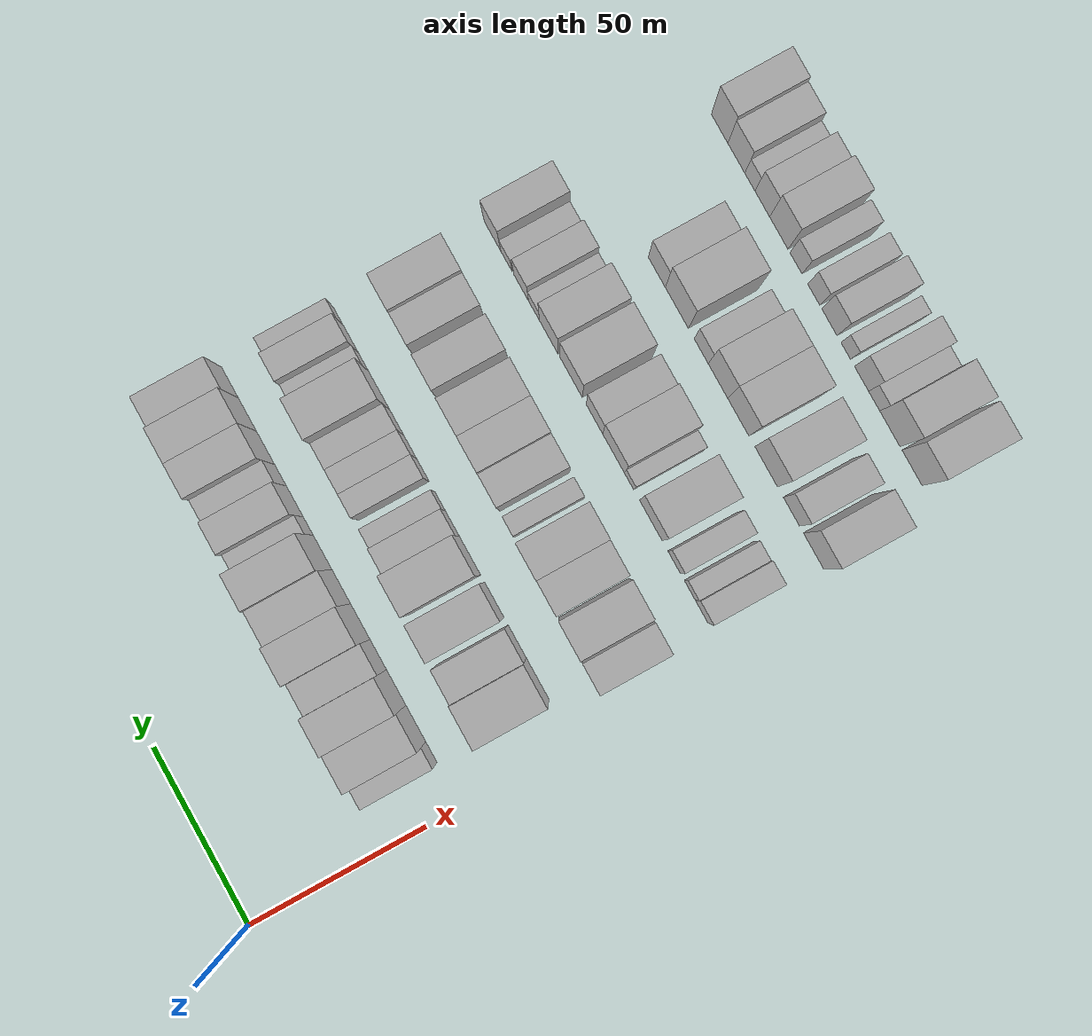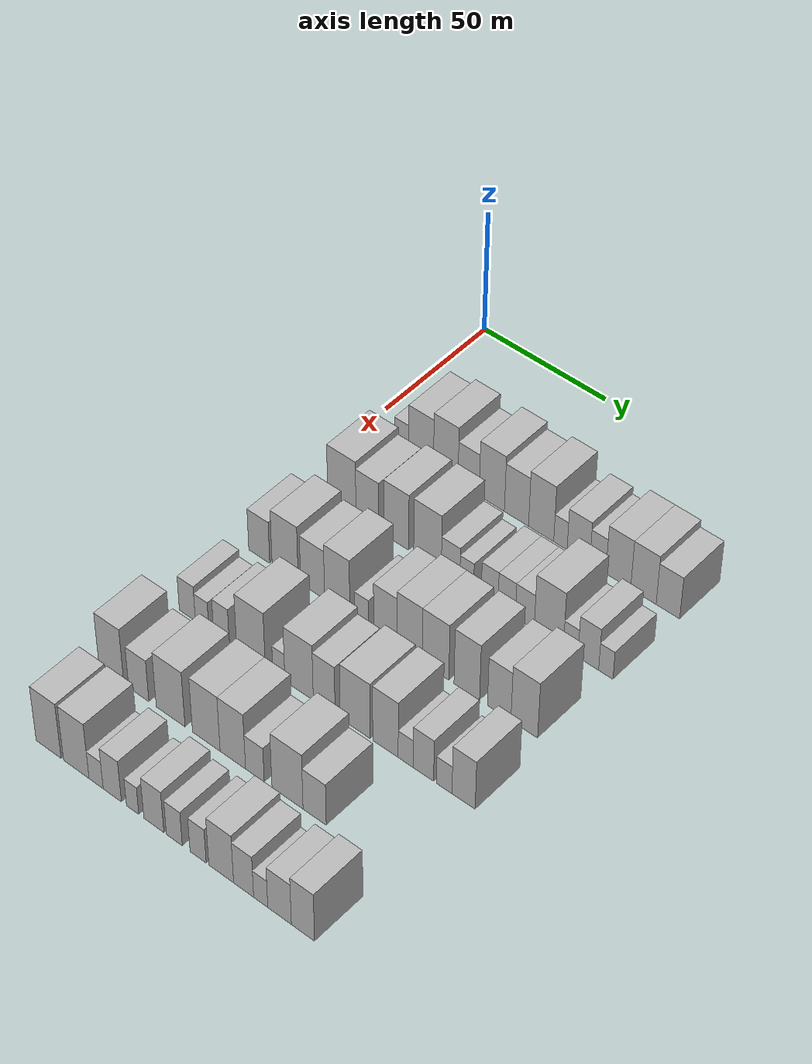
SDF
<sdf version="1.6">
 <world name="default">
  <model name="building_59">
   <static>1</static>
   <pose>50.0000 15.3868 0 0.000000 0.000000 0.000000</pose>
   <link name="link">
    <pose>0 0 6.00 0 0 0</pose>
    <collision name="collision"><geometry><box><size>20.0000 5.8748 12.0000</size></box></geometry></collision>
    <visual name="visual">
     <cast_shadows>0</cast_shadows>
     <geometry><box><size>20.0000 5.8748 12.0000</size></box></geometry>
     <material>
      <script>
       <uri>model://HANNAS_wall/materials/scripts</uri>
       <uri>model://HANNAS_wall/materials/textures</uri>
       <name>vrc/HANNAS_wall</name>
      </script>
     </material>
    </visual>
   </link>
  </model>
  <model name="building_60">
   <static>1</static>
   <pose>50.0000 23.4802 0 0.000000 0.000000 0.000000</pose>
   <link name="link">
    <pose>0 0 10.50 0 0 0</pose>
    <collision name="collision"><geometry><box><size>20.0000 10.3121 21.0000</size></box></geometry></collision>
    <visual name="visual">
     <cast_shadows>0</cast_shadows>
     <geometry><box><size>20.0000 10.3121 21.0000</size></box></geometry>
     <material>
      <script>
       <uri>model://HANNAS_wall/materials/scripts</uri>
       <uri>model://HANNAS_wall/materials/textures</uri>
       <name>vrc/HANNAS_wall</name>
      </script>
     </material>
    </visual>
   </link>
  </model>
  <model name="building_61">
   <static>1</static>
   <pose>50.0000 33.6829 0 0.000000 0.000000 0.000000</pose>
   <link name="link">
    <pose>0 0 12.00 0 0 0</pose>
    <collision name="collision"><geometry><box><size>20.0000 10.0933 24.0000</size></box></geometry></collision>
    <visual name="visual">
     <cast_shadows>0</cast_shadows>
     <geometry><box><size>20.0000 10.0933 24.0000</size></box></geometry>
     <material>
      <script>
       <uri>model://HANNAS_wall/materials/scripts</uri>
       <uri>model://HANNAS_wall/materials/textures</uri>
       <name>vrc/HANNAS_wall</name>
      </script>
     </material>
    </visual>
   </link>
  </model>
  <model name="building_62">
   <static>1</static>
   <pose>50.0000 43.0296 0 0.000000 0.000000 0.000000</pose>
   <link name="link">
    <pose>0 0 9.00 0 0 0</pose>
    <collision name="collision"><geometry><box><size>20.0000 8.6001 18.0000</size></box></geometry></collision>
    <visual name="visual">
     <cast_shadows>0</cast_shadows>
     <geometry><box><size>20.0000 8.6001 18.0000</size></box></geometry>
     <material>
      <script>
       <uri>model://HANNAS_wall/materials/scripts</uri>
       <uri>model://HANNAS_wall/materials/textures</uri>
       <name>vrc/HANNAS_wall</name>
      </script>
     </material>
    </visual>
   </link>
  </model>
  <model name="building_63">
   <static>1</static>
   <pose>50.0000 52.4383 0 0.000000 0.000000 0.000000</pose>
   <link name="link">
    <pose>0 0 12.00 0 0 0</pose>
    <collision name="collision"><geometry><box><size>20.0000 10.2171 24.0000</size></box></geometry></collision>
    <visual name="visual">
     <cast_shadows>0</cast_shadows>
     <geometry><box><size>20.0000 10.2171 24.0000</size></box></geometry>
     <material>
      <script>
       <uri>model://HANNAS_wall/materials/scripts</uri>
       <uri>model://HANNAS_wall/materials/textures</uri>
       <name>vrc/HANNAS_wall</name>
      </script>
     </material>
    </visual>
   </link>
  </model>
  <model name="building_64">
   <static>1</static>
   <pose>50.0000 62.3815 0 0.000000 0.000000 0.000000</pose>
   <link name="link">
    <pose>0 0 10.50 0 0 0</pose>
    <collision name="collision"><geometry><box><size>20.0000 9.6693 21.0000</size></box></geometry></collision>
    <visual name="visual">
     <cast_shadows>0</cast_shadows>
     <geometry><box><size>20.0000 9.6693 21.0000</size></box></geometry>
     <material>
      <script>
       <uri>model://HANNAS_wall/materials/scripts</uri>
       <uri>model://HANNAS_wall/materials/textures</uri>
       <name>vrc/HANNAS_wall</name>
      </script>
     </material>
    </visual>
   </link>
  </model>
  <model name="building_65">
   <static>1</static>
   <pose>50.0000 72.2107 0 0.000000 0.000000 0.000000</pose>
   <link name="link">
    <pose>0 0 12.00 0 0 0</pose>
    <collision name="collision"><geometry><box><size>20.0000 9.9893 24.0000</size></box></geometry></collision>
    <visual name="visual">
     <cast_shadows>0</cast_shadows>
     <geometry><box><size>20.0000 9.9893 24.0000</size></box></geometry>
     <material>
      <script>
       <uri>model://HANNAS_wall/materials/scripts</uri>
       <uri>model://HANNAS_wall/materials/textures</uri>
       <name>vrc/HANNAS_wall</name>
      </script>
     </material>
    </visual>
   </link>
  </model>
  <model name="building_66">
   <static>1</static>
   <pose>50.0000 79.8347 0 0.000000 0.000000 0.000000</pose>
   <link name="link">
    <pose>0 0 6.00 0 0 0</pose>
    <collision name="collision"><geometry><box><size>20.0000 5.2586 12.0000</size></box></geometry></collision>
    <visual name="visual">
     <cast_shadows>0</cast_shadows>
     <geometry><box><size>20.0000 5.2586 12.0000</size></box></geometry>
     <material>
      <script>
       <uri>model://HANNAS_wall/materials/scripts</uri>
       <uri>model://HANNAS_wall/materials/textures</uri>
       <name>vrc/HANNAS_wall</name>
      </script>
     </material>
    </visual>
   </link>
  </model>
  <model name="building_67">
   <static>1</static>
   <pose>50.0000 86.8928 0 0.000000 0.000000 0.000000</pose>
   <link name="link">
    <pose>0 0 9.00 0 0 0</pose>
    <collision name="collision"><geometry><box><size>20.0000 8.8576 18.0000</size></box></geometry></collision>
    <visual name="visual">
     <cast_shadows>0</cast_shadows>
     <geometry><box><size>20.0000 8.8576 18.0000</size></box></geometry>
     <material>
      <script>
       <uri>model://HANNAS_wall/materials/scripts</uri>
       <uri>model://HANNAS_wall/materials/textures</uri>
       <name>vrc/HANNAS_wall</name>
      </script>
     </material>
    </visual>
   </link>
  </model>
  <model name="building_68">
   <static>1</static>
   <pose>50.0000 94.4413 0 0.000000 0.000000 0.000000</pose>
   <link name="link">
    <pose>0 0 7.50 0 0 0</pose>
    <collision name="collision"><geometry><box><size>20.0000 6.2395 15.0000</size></box></geometry></collision>
    <visual name="visual">
     <cast_shadows>0</cast_shadows>
     <geometry><box><size>20.0000 6.2395 15.0000</size></box></geometry>
     <material>
      <script>
       <uri>model://HANNAS_wall/materials/scripts</uri>
       <uri>model://HANNAS_wall/materials/textures</uri>
       <name>vrc/HANNAS_wall</name>
      </script>
     </material>
    </visual>
   </link>
  </model>
  <model name="building_69">
   <static>1</static>
   <pose>50.0000 102.3436 0 0.000000 0.000000 0.000000</pose>
   <link name="link">
    <pose>0 0 10.50 0 0 0</pose>
    <collision name="collision"><geometry><box><size>20.0000 9.5651 21.0000</size></box></geometry></collision>
    <visual name="visual">
     <cast_shadows>0</cast_shadows>
     <geometry><box><size>20.0000 9.5651 21.0000</size></box></geometry>
     <material>
      <script>
       <uri>model://HANNAS_wall/materials/scripts</uri>
       <uri>model://HANNAS_wall/materials/textures</uri>
       <name>vrc/HANNAS_wall</name>
      </script>
     </material>
    </visual>
   </link>
  </model>
  <model name="building_70">
   <static>1</static>
   <pose>50.0000 111.9869 0 0.000000 0.000000 0.000000</pose>
   <link name="link">
    <pose>0 0 10.50 0 0 0</pose>
    <collision name="collision"><geometry><box><size>20.0000 9.7216 21.0000</size></box></geometry></collision>
    <visual name="visual">
     <cast_shadows>0</cast_shadows>
     <geometry><box><size>20.0000 9.7216 21.0000</size></box></geometry>
     <material>
      <script>
       <uri>model://HANNAS_wall/materials/scripts</uri>
       <uri>model://HANNAS_wall/materials/textures</uri>
       <name>vrc/HANNAS_wall</name>
      </script>
     </material>
    </visual>
   </link>
  </model>
  <model name="building_71">
   <static>1</static>
   <pose>50.0000 121.2988 0 0.000000 0.000000 0.000000</pose>
   <link name="link">
    <pose>0 0 9.00 0 0 0</pose>
    <collision name="collision"><geometry><box><size>20.0000 8.9022 18.0000</size></box></geometry></collision>
    <visual name="visual">
     <cast_shadows>0</cast_shadows>
     <geometry><box><size>20.0000 8.9022 18.0000</size></box></geometry>
     <material>
      <script>
       <uri>model://HANNAS_wall/materials/scripts</uri>
       <uri>model://HANNAS_wall/materials/textures</uri>
       <name>vrc/HANNAS_wall</name>
      </script>
     </material>
    </visual>
   </link>
  </model>
  <model name="building_182">
   <static>1</static>
   <pose>82.0000 18.5074 0 0.000000 0.000000 0.000000</pose>
   <link name="link">
    <pose>0 0 12.00 0 0 0</pose>
    <collision name="collision"><geometry><box><size>20.0000 11.7330 24.0000</size></box></geometry></collision>
    <visual name="visual">
     <cast_shadows>0</cast_shadows>
     <geometry><box><size>20.0000 11.7330 24.0000</size></box></geometry>
     <material>
      <script>
       <uri>model://HANNAS_wall/materials/scripts</uri>
       <uri>model://HANNAS_wall/materials/textures</uri>
       <name>vrc/HANNAS_wall</name>
      </script>
     </material>
    </visual>
   </link>
  </model>
  <model name="building_183">
   <static>1</static>
   <pose>82.0000 29.0555 0 0.000000 0.000000 0.000000</pose>
   <link name="link">
    <pose>0 0 10.50 0 0 0</pose>
    <collision name="collision"><geometry><box><size>20.0000 9.3634 21.0000</size></box></geometry></collision>
    <visual name="visual">
     <cast_shadows>0</cast_shadows>
     <geometry><box><size>20.0000 9.3634 21.0000</size></box></geometry>
     <material>
      <script>
       <uri>model://HANNAS_wall/materials/scripts</uri>
       <uri>model://HANNAS_wall/materials/textures</uri>
       <name>vrc/HANNAS_wall</name>
      </script>
     </material>
    </visual>
   </link>
  </model>
  <model name="building_184">
   <static>1</static>
   <pose>82.0000 40.8371 0 0.000000 0.000000 0.000000</pose>
   <link name="link">
    <pose>0 0 12.00 0 0 0</pose>
    <collision name="collision"><geometry><box><size>20.0000 10.1998 24.0000</size></box></geometry></collision>
    <visual name="visual">
     <cast_shadows>0</cast_shadows>
     <geometry><box><size>20.0000 10.1998 24.0000</size></box></geometry>
     <material>
      <script>
       <uri>model://HANNAS_wall/materials/scripts</uri>
       <uri>model://HANNAS_wall/materials/textures</uri>
       <name>vrc/HANNAS_wall</name>
      </script>
     </material>
    </visual>
   </link>
  </model>
  <model name="building_185">
   <static>1</static>
   <pose>82.0000 53.4792 0 0.000000 0.000000 0.000000</pose>
   <link name="link">
    <pose>0 0 12.00 0 0 0</pose>
    <collision name="collision"><geometry><box><size>20.0000 11.0843 24.0000</size></box></geometry></collision>
    <visual name="visual">
     <cast_shadows>0</cast_shadows>
     <geometry><box><size>20.0000 11.0843 24.0000</size></box></geometry>
     <material>
      <script>
       <uri>model://HANNAS_wall/materials/scripts</uri>
       <uri>model://HANNAS_wall/materials/textures</uri>
       <name>vrc/HANNAS_wall</name>
      </script>
     </material>
    </visual>
   </link>
  </model>
  <model name="building_186">
   <static>1</static>
   <pose>82.0000 62.7030 0 0.000000 0.000000 0.000000</pose>
   <link name="link">
    <pose>0 0 7.50 0 0 0</pose>
    <collision name="collision"><geometry><box><size>20.0000 7.3633 15.0000</size></box></geometry></collision>
    <visual name="visual">
     <cast_shadows>0</cast_shadows>
     <geometry><box><size>20.0000 7.3633 15.0000</size></box></geometry>
     <material>
      <script>
       <uri>model://HANNAS_wall/materials/scripts</uri>
       <uri>model://HANNAS_wall/materials/textures</uri>
       <name>vrc/HANNAS_wall</name>
      </script>
     </material>
    </visual>
   </link>
  </model>
  <model name="building_187">
   <static>1</static>
   <pose>82.0000 69.1044 0 0.000000 0.000000 0.000000</pose>
   <link name="link">
    <pose>0 0 6.00 0 0 0</pose>
    <collision name="collision"><geometry><box><size>20.0000 5.4395 12.0000</size></box></geometry></collision>
    <visual name="visual">
     <cast_shadows>0</cast_shadows>
     <geometry><box><size>20.0000 5.4395 12.0000</size></box></geometry>
     <material>
      <script>
       <uri>model://HANNAS_wall/materials/scripts</uri>
       <uri>model://HANNAS_wall/materials/textures</uri>
       <name>vrc/HANNAS_wall</name>
      </script>
     </material>
    </visual>
   </link>
  </model>
  <model name="building_188">
   <static>1</static>
   <pose>82.0000 78.1077 0 0.000000 0.000000 0.000000</pose>
   <link name="link">
    <pose>0 0 7.50 0 0 0</pose>
    <collision name="collision"><geometry><box><size>20.0000 6.5672 15.0000</size></box></geometry></collision>
    <visual name="visual">
     <cast_shadows>0</cast_shadows>
     <geometry><box><size>20.0000 6.5672 15.0000</size></box></geometry>
     <material>
      <script>
       <uri>model://HANNAS_wall/materials/scripts</uri>
       <uri>model://HANNAS_wall/materials/textures</uri>
       <name>vrc/HANNAS_wall</name>
      </script>
     </material>
    </visual>
   </link>
  </model>
  <model name="building_189">
   <static>1</static>
   <pose>82.0000 84.7889 0 0.000000 0.000000 0.000000</pose>
   <link name="link">
    <pose>0 0 7.50 0 0 0</pose>
    <collision name="collision"><geometry><box><size>20.0000 6.7951 15.0000</size></box></geometry></collision>
    <visual name="visual">
     <cast_shadows>0</cast_shadows>
     <geometry><box><size>20.0000 6.7951 15.0000</size></box></geometry>
     <material>
      <script>
       <uri>model://HANNAS_wall/materials/scripts</uri>
       <uri>model://HANNAS_wall/materials/textures</uri>
       <name>vrc/HANNAS_wall</name>
      </script>
     </material>
    </visual>
   </link>
  </model>
  <model name="building_190">
   <static>1</static>
   <pose>82.0000 91.8250 0 0.000000 0.000000 0.000000</pose>
   <link name="link">
    <pose>0 0 7.50 0 0 0</pose>
    <collision name="collision"><geometry><box><size>20.0000 7.2771 15.0000</size></box></geometry></collision>
    <visual name="visual">
     <cast_shadows>0</cast_shadows>
     <geometry><box><size>20.0000 7.2771 15.0000</size></box></geometry>
     <material>
      <script>
       <uri>model://HANNAS_wall/materials/scripts</uri>
       <uri>model://HANNAS_wall/materials/textures</uri>
       <name>vrc/HANNAS_wall</name>
      </script>
     </material>
    </visual>
   </link>
  </model>
  <model name="building_191">
   <static>1</static>
   <pose>82.0000 101.0601 0 0.000000 0.000000 0.000000</pose>
   <link name="link">
    <pose>0 0 12.00 0 0 0</pose>
    <collision name="collision"><geometry><box><size>20.0000 11.1932 24.0000</size></box></geometry></collision>
    <visual name="visual">
     <cast_shadows>0</cast_shadows>
     <geometry><box><size>20.0000 11.1932 24.0000</size></box></geometry>
     <material>
      <script>
       <uri>model://HANNAS_wall/materials/scripts</uri>
       <uri>model://HANNAS_wall/materials/textures</uri>
       <name>vrc/HANNAS_wall</name>
      </script>
     </material>
    </visual>
   </link>
  </model>
  <model name="building_192">
   <static>1</static>
   <pose>82.0000 109.4199 0 0.000000 0.000000 0.000000</pose>
   <link name="link">
    <pose>0 0 6.00 0 0 0</pose>
    <collision name="collision"><geometry><box><size>20.0000 5.5265 12.0000</size></box></geometry></collision>
    <visual name="visual">
     <cast_shadows>0</cast_shadows>
     <geometry><box><size>20.0000 5.5265 12.0000</size></box></geometry>
     <material>
      <script>
       <uri>model://HANNAS_wall/materials/scripts</uri>
       <uri>model://HANNAS_wall/materials/textures</uri>
       <name>vrc/HANNAS_wall</name>
      </script>
     </material>
    </visual>
   </link>
  </model>
  <model name="building_193">
   <static>1</static>
   <pose>82.0000 116.1025 0 0.000000 0.000000 0.000000</pose>
   <link name="link">
    <pose>0 0 9.00 0 0 0</pose>
    <collision name="collision"><geometry><box><size>20.0000 7.8385 18.0000</size></box></geometry></collision>
    <visual name="visual">
     <cast_shadows>0</cast_shadows>
     <geometry><box><size>20.0000 7.8385 18.0000</size></box></geometry>
     <material>
      <script>
       <uri>model://HANNAS_wall/materials/scripts</uri>
       <uri>model://HANNAS_wall/materials/textures</uri>
       <name>vrc/HANNAS_wall</name>
      </script>
     </material>
    </visual>
   </link>
  </model>
  <model name="building_194">
   <static>1</static>
   <pose>82.0000 122.7184 0 0.000000 0.000000 0.000000</pose>
   <link name="link">
    <pose>0 0 6.00 0 0 0</pose>
    <collision name="collision"><geometry><box><size>20.0000 5.3933 12.0000</size></box></geometry></collision>
    <visual name="visual">
     <cast_shadows>0</cast_shadows>
     <geometry><box><size>20.0000 5.3933 12.0000</size></box></geometry>
     <material>
      <script>
       <uri>model://HANNAS_wall/materials/scripts</uri>
       <uri>model://HANNAS_wall/materials/textures</uri>
       <name>vrc/HANNAS_wall</name>
      </script>
     </material>
    </visual>
   </link>
  </model>
  <model name="building_301">
   <static>1</static>
   <pose>114.0000 13.1489 0 0.000000 0.000000 0.000000</pose>
   <link name="link">
    <pose>0 0 9.00 0 0 0</pose>
    <collision name="collision"><geometry><box><size>20.0000 8.7026 18.0000</size></box></geometry></collision>
    <visual name="visual">
     <cast_shadows>0</cast_shadows>
     <geometry><box><size>20.0000 8.7026 18.0000</size></box></geometry>
     <material>
      <script>
       <uri>model://HANNAS_wall/materials/scripts</uri>
       <uri>model://HANNAS_wall/materials/textures</uri>
       <name>vrc/HANNAS_wall</name>
      </script>
     </material>
    </visual>
   </link>
  </model>
  <model name="building_302">
   <static>1</static>
   <pose>114.0000 23.8713 0 0.000000 0.000000 0.000000</pose>
   <link name="link">
    <pose>0 0 12.00 0 0 0</pose>
    <collision name="collision"><geometry><box><size>20.0000 10.7421 24.0000</size></box></geometry></collision>
    <visual name="visual">
     <cast_shadows>0</cast_shadows>
     <geometry><box><size>20.0000 10.7421 24.0000</size></box></geometry>
     <material>
      <script>
       <uri>model://HANNAS_wall/materials/scripts</uri>
       <uri>model://HANNAS_wall/materials/textures</uri>
       <name>vrc/HANNAS_wall</name>
      </script>
     </material>
    </visual>
   </link>
  </model>
  <model name="building_303">
   <static>1</static>
   <pose>114.0000 35.1069 0 0.000000 0.000000 0.000000</pose>
   <link name="link">
    <pose>0 0 10.50 0 0 0</pose>
    <collision name="collision"><geometry><box><size>20.0000 9.7292 21.0000</size></box></geometry></collision>
    <visual name="visual">
     <cast_shadows>0</cast_shadows>
     <geometry><box><size>20.0000 9.7292 21.0000</size></box></geometry>
     <material>
      <script>
       <uri>model://HANNAS_wall/materials/scripts</uri>
       <uri>model://HANNAS_wall/materials/textures</uri>
       <name>vrc/HANNAS_wall</name>
      </script>
     </material>
    </visual>
   </link>
  </model>
  <model name="building_304">
   <static>1</static>
   <pose>114.0000 45.0587 0 0.000000 0.000000 0.000000</pose>
   <link name="link">
    <pose>0 0 12.00 0 0 0</pose>
    <collision name="collision"><geometry><box><size>20.0000 10.1744 24.0000</size></box></geometry></collision>
    <visual name="visual">
     <cast_shadows>0</cast_shadows>
     <geometry><box><size>20.0000 10.1744 24.0000</size></box></geometry>
     <material>
      <script>
       <uri>model://HANNAS_wall/materials/scripts</uri>
       <uri>model://HANNAS_wall/materials/textures</uri>
       <name>vrc/HANNAS_wall</name>
      </script>
     </material>
    </visual>
   </link>
  </model>
  <model name="building_305">
   <static>1</static>
   <pose>114.0000 54.8915 0 0.000000 0.000000 0.000000</pose>
   <link name="link">
    <pose>0 0 6.00 0 0 0</pose>
    <collision name="collision"><geometry><box><size>20.0000 5.4911 12.0000</size></box></geometry></collision>
    <visual name="visual">
     <cast_shadows>0</cast_shadows>
     <geometry><box><size>20.0000 5.4911 12.0000</size></box></geometry>
     <material>
      <script>
       <uri>model://HANNAS_wall/materials/scripts</uri>
       <uri>model://HANNAS_wall/materials/textures</uri>
       <name>vrc/HANNAS_wall</name>
      </script>
     </material>
    </visual>
   </link>
  </model>
  <model name="building_306">
   <static>1</static>
   <pose>114.0000 64.2432 0 0.000000 0.000000 0.000000</pose>
   <link name="link">
    <pose>0 0 10.50 0 0 0</pose>
    <collision name="collision"><geometry><box><size>20.0000 9.2123 21.0000</size></box></geometry></collision>
    <visual name="visual">
     <cast_shadows>0</cast_shadows>
     <geometry><box><size>20.0000 9.2123 21.0000</size></box></geometry>
     <material>
      <script>
       <uri>model://HANNAS_wall/materials/scripts</uri>
       <uri>model://HANNAS_wall/materials/textures</uri>
       <name>vrc/HANNAS_wall</name>
      </script>
     </material>
    </visual>
   </link>
  </model>
  <model name="building_307">
   <static>1</static>
   <pose>114.0000 73.8010 0 0.000000 0.000000 0.000000</pose>
   <link name="link">
    <pose>0 0 12.00 0 0 0</pose>
    <collision name="collision"><geometry><box><size>20.0000 9.9033 24.0000</size></box></geometry></collision>
    <visual name="visual">
     <cast_shadows>0</cast_shadows>
     <geometry><box><size>20.0000 9.9033 24.0000</size></box></geometry>
     <material>
      <script>
       <uri>model://HANNAS_wall/materials/scripts</uri>
       <uri>model://HANNAS_wall/materials/textures</uri>
       <name>vrc/HANNAS_wall</name>
      </script>
     </material>
    </visual>
   </link>
  </model>
  <model name="building_308">
   <static>1</static>
   <pose>114.0000 83.9132 0 0.000000 0.000000 0.000000</pose>
   <link name="link">
    <pose>0 0 12.00 0 0 0</pose>
    <collision name="collision"><geometry><box><size>20.0000 10.3211 24.0000</size></box></geometry></collision>
    <visual name="visual">
     <cast_shadows>0</cast_shadows>
     <geometry><box><size>20.0000 10.3211 24.0000</size></box></geometry>
     <material>
      <script>
       <uri>model://HANNAS_wall/materials/scripts</uri>
       <uri>model://HANNAS_wall/materials/textures</uri>
       <name>vrc/HANNAS_wall</name>
      </script>
     </material>
    </visual>
   </link>
  </model>
  <model name="building_309">
   <static>1</static>
   <pose>114.0000 95.9749 0 0.000000 0.000000 0.000000</pose>
   <link name="link">
    <pose>0 0 12.00 0 0 0</pose>
    <collision name="collision"><geometry><box><size>20.0000 9.8024 24.0000</size></box></geometry></collision>
    <visual name="visual">
     <cast_shadows>0</cast_shadows>
     <geometry><box><size>20.0000 9.8024 24.0000</size></box></geometry>
     <material>
      <script>
       <uri>model://HANNAS_wall/materials/scripts</uri>
       <uri>model://HANNAS_wall/materials/textures</uri>
       <name>vrc/HANNAS_wall</name>
      </script>
     </material>
    </visual>
   </link>
  </model>
  <model name="building_310">
   <static>1</static>
   <pose>114.0000 108.3152 0 0.000000 0.000000 0.000000</pose>
   <link name="link">
    <pose>0 0 10.50 0 0 0</pose>
    <collision name="collision"><geometry><box><size>20.0000 8.8782 21.0000</size></box></geometry></collision>
    <visual name="visual">
     <cast_shadows>0</cast_shadows>
     <geometry><box><size>20.0000 8.8782 21.0000</size></box></geometry>
     <material>
      <script>
       <uri>model://HANNAS_wall/materials/scripts</uri>
       <uri>model://HANNAS_wall/materials/textures</uri>
       <name>vrc/HANNAS_wall</name>
      </script>
     </material>
    </visual>
   </link>
  </model>
  <model name="building_311">
   <static>1</static>
   <pose>114.0000 117.7683 0 0.000000 0.000000 0.000000</pose>
   <link name="link">
    <pose>0 0 12.00 0 0 0</pose>
    <collision name="collision"><geometry><box><size>20.0000 10.0280 24.0000</size></box></geometry></collision>
    <visual name="visual">
     <cast_shadows>0</cast_shadows>
     <geometry><box><size>20.0000 10.0280 24.0000</size></box></geometry>
     <material>
      <script>
       <uri>model://HANNAS_wall/materials/scripts</uri>
       <uri>model://HANNAS_wall/materials/textures</uri>
       <name>vrc/HANNAS_wall</name>
      </script>
     </material>
    </visual>
   </link>
  </model>
  <model name="building_420">
   <static>1</static>
   <pose>146.0000 13.2618 0 0.000000 0.000000 0.000000</pose>
   <link name="link">
    <pose>0 0 7.50 0 0 0</pose>
    <collision name="collision"><geometry><box><size>20.0000 6.6102 15.0000</size></box></geometry></collision>
    <visual name="visual">
     <cast_shadows>0</cast_shadows>
     <geometry><box><size>20.0000 6.6102 15.0000</size></box></geometry>
     <material>
      <script>
       <uri>model://HANNAS_wall/materials/scripts</uri>
       <uri>model://HANNAS_wall/materials/textures</uri>
       <name>vrc/HANNAS_wall</name>
      </script>
     </material>
    </visual>
   </link>
  </model>
  <model name="building_421">
   <static>1</static>
   <pose>146.0000 19.3407 0 0.000000 0.000000 0.000000</pose>
   <link name="link">
    <pose>0 0 6.00 0 0 0</pose>
    <collision name="collision"><geometry><box><size>20.0000 5.5475 12.0000</size></box></geometry></collision>
    <visual name="visual">
     <cast_shadows>0</cast_shadows>
     <geometry><box><size>20.0000 5.5475 12.0000</size></box></geometry>
     <material>
      <script>
       <uri>model://HANNAS_wall/materials/scripts</uri>
       <uri>model://HANNAS_wall/materials/textures</uri>
       <name>vrc/HANNAS_wall</name>
      </script>
     </material>
    </visual>
   </link>
  </model>
  <model name="building_422">
   <static>1</static>
   <pose>146.0000 27.3079 0 0.000000 0.000000 0.000000</pose>
   <link name="link">
    <pose>0 0 7.50 0 0 0</pose>
    <collision name="collision"><geometry><box><size>20.0000 6.3868 15.0000</size></box></geometry></collision>
    <visual name="visual">
     <cast_shadows>0</cast_shadows>
     <geometry><box><size>20.0000 6.3868 15.0000</size></box></geometry>
     <material>
      <script>
       <uri>model://HANNAS_wall/materials/scripts</uri>
       <uri>model://HANNAS_wall/materials/textures</uri>
       <name>vrc/HANNAS_wall</name>
      </script>
     </material>
    </visual>
   </link>
  </model>
  <model name="building_423">
   <static>1</static>
   <pose>146.0000 39.2919 0 0.000000 0.000000 0.000000</pose>
   <link name="link">
    <pose>0 0 12.00 0 0 0</pose>
    <collision name="collision"><geometry><box><size>20.0000 11.5812 24.0000</size></box></geometry></collision>
    <visual name="visual">
     <cast_shadows>0</cast_shadows>
     <geometry><box><size>20.0000 11.5812 24.0000</size></box></geometry>
     <material>
      <script>
       <uri>model://HANNAS_wall/materials/scripts</uri>
       <uri>model://HANNAS_wall/materials/textures</uri>
       <name>vrc/HANNAS_wall</name>
      </script>
     </material>
    </visual>
   </link>
  </model>
  <model name="building_424">
   <static>1</static>
   <pose>146.0000 50.4912 0 0.000000 0.000000 0.000000</pose>
   <link name="link">
    <pose>0 0 6.00 0 0 0</pose>
    <collision name="collision"><geometry><box><size>20.0000 4.8176 12.0000</size></box></geometry></collision>
    <visual name="visual">
     <cast_shadows>0</cast_shadows>
     <geometry><box><size>20.0000 4.8176 12.0000</size></box></geometry>
     <material>
      <script>
       <uri>model://HANNAS_wall/materials/scripts</uri>
       <uri>model://HANNAS_wall/materials/textures</uri>
       <name>vrc/HANNAS_wall</name>
      </script>
     </material>
    </visual>
   </link>
  </model>
  <model name="building_425">
   <static>1</static>
   <pose>146.0000 58.5255 0 0.000000 0.000000 0.000000</pose>
   <link name="link">
    <pose>0 0 12.00 0 0 0</pose>
    <collision name="collision"><geometry><box><size>20.0000 11.2509 24.0000</size></box></geometry></collision>
    <visual name="visual">
     <cast_shadows>0</cast_shadows>
     <geometry><box><size>20.0000 11.2509 24.0000</size></box></geometry>
     <material>
      <script>
       <uri>model://HANNAS_wall/materials/scripts</uri>
       <uri>model://HANNAS_wall/materials/textures</uri>
       <name>vrc/HANNAS_wall</name>
      </script>
     </material>
    </visual>
   </link>
  </model>
  <model name="building_426">
   <static>1</static>
   <pose>146.0000 68.4294 0 0.000000 0.000000 0.000000</pose>
   <link name="link">
    <pose>0 0 10.50 0 0 0</pose>
    <collision name="collision"><geometry><box><size>20.0000 8.5569 21.0000</size></box></geometry></collision>
    <visual name="visual">
     <cast_shadows>0</cast_shadows>
     <geometry><box><size>20.0000 8.5569 21.0000</size></box></geometry>
     <material>
      <script>
       <uri>model://HANNAS_wall/materials/scripts</uri>
       <uri>model://HANNAS_wall/materials/textures</uri>
       <name>vrc/HANNAS_wall</name>
      </script>
     </material>
    </visual>
   </link>
  </model>
  <model name="building_427">
   <static>1</static>
   <pose>146.0000 80.5045 0 0.000000 0.000000 0.000000</pose>
   <link name="link">
    <pose>0 0 12.00 0 0 0</pose>
    <collision name="collision"><geometry><box><size>20.0000 11.5934 24.0000</size></box></geometry></collision>
    <visual name="visual">
     <cast_shadows>0</cast_shadows>
     <geometry><box><size>20.0000 11.5934 24.0000</size></box></geometry>
     <material>
      <script>
       <uri>model://HANNAS_wall/materials/scripts</uri>
       <uri>model://HANNAS_wall/materials/textures</uri>
       <name>vrc/HANNAS_wall</name>
      </script>
     </material>
    </visual>
   </link>
  </model>
  <model name="building_428">
   <static>1</static>
   <pose>146.0000 92.1626 0 0.000000 0.000000 0.000000</pose>
   <link name="link">
    <pose>0 0 12.00 0 0 0</pose>
    <collision name="collision"><geometry><box><size>20.0000 9.7228 24.0000</size></box></geometry></collision>
    <visual name="visual">
     <cast_shadows>0</cast_shadows>
     <geometry><box><size>20.0000 9.7228 24.0000</size></box></geometry>
     <material>
      <script>
       <uri>model://HANNAS_wall/materials/scripts</uri>
       <uri>model://HANNAS_wall/materials/textures</uri>
       <name>vrc/HANNAS_wall</name>
      </script>
     </material>
    </visual>
   </link>
  </model>
  <model name="building_429">
   <static>1</static>
   <pose>146.0000 99.9062 0 0.000000 0.000000 0.000000</pose>
   <link name="link">
    <pose>0 0 6.00 0 0 0</pose>
    <collision name="collision"><geometry><box><size>20.0000 5.7643 12.0000</size></box></geometry></collision>
    <visual name="visual">
     <cast_shadows>0</cast_shadows>
     <geometry><box><size>20.0000 5.7643 12.0000</size></box></geometry>
     <material>
      <script>
       <uri>model://HANNAS_wall/materials/scripts</uri>
       <uri>model://HANNAS_wall/materials/textures</uri>
       <name>vrc/HANNAS_wall</name>
      </script>
     </material>
    </visual>
   </link>
  </model>
  <model name="building_430">
   <static>1</static>
   <pose>146.0000 106.6086 0 0.000000 0.000000 0.000000</pose>
   <link name="link">
    <pose>0 0 9.00 0 0 0</pose>
    <collision name="collision"><geometry><box><size>20.0000 7.6405 18.0000</size></box></geometry></collision>
    <visual name="visual">
     <cast_shadows>0</cast_shadows>
     <geometry><box><size>20.0000 7.6405 18.0000</size></box></geometry>
     <material>
      <script>
       <uri>model://HANNAS_wall/materials/scripts</uri>
       <uri>model://HANNAS_wall/materials/textures</uri>
       <name>vrc/HANNAS_wall</name>
      </script>
     </material>
    </visual>
   </link>
  </model>
  <model name="building_431">
   <static>1</static>
   <pose>146.0000 114.3692 0 0.000000 0.000000 0.000000</pose>
   <link name="link">
    <pose>0 0 6.00 0 0 0</pose>
    <collision name="collision"><geometry><box><size>20.0000 5.8807 12.0000</size></box></geometry></collision>
    <visual name="visual">
     <cast_shadows>0</cast_shadows>
     <geometry><box><size>20.0000 5.8807 12.0000</size></box></geometry>
     <material>
      <script>
       <uri>model://HANNAS_wall/materials/scripts</uri>
       <uri>model://HANNAS_wall/materials/textures</uri>
       <name>vrc/HANNAS_wall</name>
      </script>
     </material>
    </visual>
   </link>
  </model>
  <model name="building_432">
   <static>1</static>
   <pose>146.0000 121.6203 0 0.000000 0.000000 0.000000</pose>
   <link name="link">
    <pose>0 0 10.50 0 0 0</pose>
    <collision name="collision"><geometry><box><size>20.0000 8.6214 21.0000</size></box></geometry></collision>
    <visual name="visual">
     <cast_shadows>0</cast_shadows>
     <geometry><box><size>20.0000 8.6214 21.0000</size></box></geometry>
     <material>
      <script>
       <uri>model://HANNAS_wall/materials/scripts</uri>
       <uri>model://HANNAS_wall/materials/textures</uri>
       <name>vrc/HANNAS_wall</name>
      </script>
     </material>
    </visual>
   </link>
  </model>
  <model name="building_538">
   <static>1</static>
   <pose>178.0000 12.8240 0 0.000000 0.000000 0.000000</pose>
   <link name="link">
    <pose>0 0 12.00 0 0 0</pose>
    <collision name="collision"><geometry><box><size>20.0000 10.2092 24.0000</size></box></geometry></collision>
    <visual name="visual">
     <cast_shadows>0</cast_shadows>
     <geometry><box><size>20.0000 10.2092 24.0000</size></box></geometry>
     <material>
      <script>
       <uri>model://HANNAS_wall/materials/scripts</uri>
       <uri>model://HANNAS_wall/materials/textures</uri>
       <name>vrc/HANNAS_wall</name>
      </script>
     </material>
    </visual>
   </link>
  </model>
  <model name="building_539">
   <static>1</static>
   <pose>178.0000 24.0530 0 0.000000 0.000000 0.000000</pose>
   <link name="link">
    <pose>0 0 9.00 0 0 0</pose>
    <collision name="collision"><geometry><box><size>20.0000 8.2489 18.0000</size></box></geometry></collision>
    <visual name="visual">
     <cast_shadows>0</cast_shadows>
     <geometry><box><size>20.0000 8.2489 18.0000</size></box></geometry>
     <material>
      <script>
       <uri>model://HANNAS_wall/materials/scripts</uri>
       <uri>model://HANNAS_wall/materials/textures</uri>
       <name>vrc/HANNAS_wall</name>
      </script>
     </material>
    </visual>
   </link>
  </model>
  <model name="building_540">
   <static>1</static>
   <pose>178.0000 36.9813 0 0.000000 0.000000 0.000000</pose>
   <link name="link">
    <pose>0 0 12.00 0 0 0</pose>
    <collision name="collision"><geometry><box><size>20.0000 11.6076 24.0000</size></box></geometry></collision>
    <visual name="visual">
     <cast_shadows>0</cast_shadows>
     <geometry><box><size>20.0000 11.6076 24.0000</size></box></geometry>
     <material>
      <script>
       <uri>model://HANNAS_wall/materials/scripts</uri>
       <uri>model://HANNAS_wall/materials/textures</uri>
       <name>vrc/HANNAS_wall</name>
      </script>
     </material>
    </visual>
   </link>
  </model>
  <model name="building_541">
   <static>1</static>
   <pose>178.0000 51.2688 0 0.000000 0.000000 0.000000</pose>
   <link name="link">
    <pose>0 0 12.00 0 0 0</pose>
    <collision name="collision"><geometry><box><size>20.0000 10.9675 24.0000</size></box></geometry></collision>
    <visual name="visual">
     <cast_shadows>0</cast_shadows>
     <geometry><box><size>20.0000 10.9675 24.0000</size></box></geometry>
     <material>
      <script>
       <uri>model://HANNAS_wall/materials/scripts</uri>
       <uri>model://HANNAS_wall/materials/textures</uri>
       <name>vrc/HANNAS_wall</name>
      </script>
     </material>
    </visual>
   </link>
  </model>
  <model name="building_542">
   <static>1</static>
   <pose>178.0000 61.7638 0 0.000000 0.000000 0.000000</pose>
   <link name="link">
    <pose>0 0 12.00 0 0 0</pose>
    <collision name="collision"><geometry><box><size>20.0000 10.0224 24.0000</size></box></geometry></collision>
    <visual name="visual">
     <cast_shadows>0</cast_shadows>
     <geometry><box><size>20.0000 10.0224 24.0000</size></box></geometry>
     <material>
      <script>
       <uri>model://HANNAS_wall/materials/scripts</uri>
       <uri>model://HANNAS_wall/materials/textures</uri>
       <name>vrc/HANNAS_wall</name>
      </script>
     </material>
    </visual>
   </link>
  </model>
  <model name="building_543">
   <static>1</static>
   <pose>178.0000 70.4170 0 0.000000 0.000000 0.000000</pose>
   <link name="link">
    <pose>0 0 7.50 0 0 0</pose>
    <collision name="collision"><geometry><box><size>20.0000 7.2840 15.0000</size></box></geometry></collision>
    <visual name="visual">
     <cast_shadows>0</cast_shadows>
     <geometry><box><size>20.0000 7.2840 15.0000</size></box></geometry>
     <material>
      <script>
       <uri>model://HANNAS_wall/materials/scripts</uri>
       <uri>model://HANNAS_wall/materials/textures</uri>
       <name>vrc/HANNAS_wall</name>
      </script>
     </material>
    </visual>
   </link>
  </model>
  <model name="building_544">
   <static>1</static>
   <pose>178.0000 83.0331 0 0.000000 0.000000 0.000000</pose>
   <link name="link">
    <pose>0 0 12.00 0 0 0</pose>
    <collision name="collision"><geometry><box><size>20.0000 11.9483 24.0000</size></box></geometry></collision>
    <visual name="visual">
     <cast_shadows>0</cast_shadows>
     <geometry><box><size>20.0000 11.9483 24.0000</size></box></geometry>
     <material>
      <script>
       <uri>model://HANNAS_wall/materials/scripts</uri>
       <uri>model://HANNAS_wall/materials/textures</uri>
       <name>vrc/HANNAS_wall</name>
      </script>
     </material>
    </visual>
   </link>
  </model>
  <model name="building_545">
   <static>1</static>
   <pose>178.0000 93.4257 0 0.000000 0.000000 0.000000</pose>
   <link name="link">
    <pose>0 0 9.00 0 0 0</pose>
    <collision name="collision"><geometry><box><size>20.0000 8.8368 18.0000</size></box></geometry></collision>
    <visual name="visual">
     <cast_shadows>0</cast_shadows>
     <geometry><box><size>20.0000 8.8368 18.0000</size></box></geometry>
     <material>
      <script>
       <uri>model://HANNAS_wall/materials/scripts</uri>
       <uri>model://HANNAS_wall/materials/textures</uri>
       <name>vrc/HANNAS_wall</name>
      </script>
     </material>
    </visual>
   </link>
  </model>
  <model name="building_651">
   <static>1</static>
   <pose>210.0000 18.9127 0 0.000000 0.000000 0.000000</pose>
   <link name="link">
    <pose>0 0 12.00 0 0 0</pose>
    <collision name="collision"><geometry><box><size>20.0000 10.2159 24.0000</size></box></geometry></collision>
    <visual name="visual">
     <cast_shadows>0</cast_shadows>
     <geometry><box><size>20.0000 10.2159 24.0000</size></box></geometry>
     <material>
      <script>
       <uri>model://HANNAS_wall/materials/scripts</uri>
       <uri>model://HANNAS_wall/materials/textures</uri>
       <name>vrc/HANNAS_wall</name>
      </script>
     </material>
    </visual>
   </link>
  </model>
  <model name="building_652">
   <static>1</static>
   <pose>210.0000 30.1761 0 0.000000 0.000000 0.000000</pose>
   <link name="link">
    <pose>0 0 12.00 0 0 0</pose>
    <collision name="collision"><geometry><box><size>20.0000 10.3109 24.0000</size></box></geometry></collision>
    <visual name="visual">
     <cast_shadows>0</cast_shadows>
     <geometry><box><size>20.0000 10.3109 24.0000</size></box></geometry>
     <material>
      <script>
       <uri>model://HANNAS_wall/materials/scripts</uri>
       <uri>model://HANNAS_wall/materials/textures</uri>
       <name>vrc/HANNAS_wall</name>
      </script>
     </material>
    </visual>
   </link>
  </model>
  <model name="building_653">
   <static>1</static>
   <pose>210.0000 38.1860 0 0.000000 0.000000 0.000000</pose>
   <link name="link">
    <pose>0 0 6.00 0 0 0</pose>
    <collision name="collision"><geometry><box><size>20.0000 5.7089 12.0000</size></box></geometry></collision>
    <visual name="visual">
     <cast_shadows>0</cast_shadows>
     <geometry><box><size>20.0000 5.7089 12.0000</size></box></geometry>
     <material>
      <script>
       <uri>model://HANNAS_wall/materials/scripts</uri>
       <uri>model://HANNAS_wall/materials/textures</uri>
       <name>vrc/HANNAS_wall</name>
      </script>
     </material>
    </visual>
   </link>
  </model>
  <model name="building_654">
   <static>1</static>
   <pose>210.0000 44.6689 0 0.000000 0.000000 0.000000</pose>
   <link name="link">
    <pose>0 0 9.00 0 0 0</pose>
    <collision name="collision"><geometry><box><size>20.0000 7.2569 18.0000</size></box></geometry></collision>
    <visual name="visual">
     <cast_shadows>0</cast_shadows>
     <geometry><box><size>20.0000 7.2569 18.0000</size></box></geometry>
     <material>
      <script>
       <uri>model://HANNAS_wall/materials/scripts</uri>
       <uri>model://HANNAS_wall/materials/textures</uri>
       <name>vrc/HANNAS_wall</name>
      </script>
     </material>
    </visual>
   </link>
  </model>
  <model name="building_655">
   <static>1</static>
   <pose>210.0000 52.7386 0 0.000000 0.000000 0.000000</pose>
   <link name="link">
    <pose>0 0 6.00 0 0 0</pose>
    <collision name="collision"><geometry><box><size>20.0000 4.8825 12.0000</size></box></geometry></collision>
    <visual name="visual">
     <cast_shadows>0</cast_shadows>
     <geometry><box><size>20.0000 4.8825 12.0000</size></box></geometry>
     <material>
      <script>
       <uri>model://HANNAS_wall/materials/scripts</uri>
       <uri>model://HANNAS_wall/materials/textures</uri>
       <name>vrc/HANNAS_wall</name>
      </script>
     </material>
    </visual>
   </link>
  </model>
  <model name="building_656">
   <static>1</static>
   <pose>210.0000 61.1026 0 0.000000 0.000000 0.000000</pose>
   <link name="link">
    <pose>0 0 9.00 0 0 0</pose>
    <collision name="collision"><geometry><box><size>20.0000 7.8455 18.0000</size></box></geometry></collision>
    <visual name="visual">
     <cast_shadows>0</cast_shadows>
     <geometry><box><size>20.0000 7.8455 18.0000</size></box></geometry>
     <material>
      <script>
       <uri>model://HANNAS_wall/materials/scripts</uri>
       <uri>model://HANNAS_wall/materials/textures</uri>
       <name>vrc/HANNAS_wall</name>
      </script>
     </material>
    </visual>
   </link>
  </model>
  <model name="building_657">
   <static>1</static>
   <pose>210.0000 69.1184 0 0.000000 0.000000 0.000000</pose>
   <link name="link">
    <pose>0 0 7.50 0 0 0</pose>
    <collision name="collision"><geometry><box><size>20.0000 6.1859 15.0000</size></box></geometry></collision>
    <visual name="visual">
     <cast_shadows>0</cast_shadows>
     <geometry><box><size>20.0000 6.1859 15.0000</size></box></geometry>
     <material>
      <script>
       <uri>model://HANNAS_wall/materials/scripts</uri>
       <uri>model://HANNAS_wall/materials/textures</uri>
       <name>vrc/HANNAS_wall</name>
      </script>
     </material>
    </visual>
   </link>
  </model>
  <model name="building_658">
   <static>1</static>
   <pose>210.0000 78.3222 0 0.000000 0.000000 0.000000</pose>
   <link name="link">
    <pose>0 0 7.50 0 0 0</pose>
    <collision name="collision"><geometry><box><size>20.0000 6.2217 15.0000</size></box></geometry></collision>
    <visual name="visual">
     <cast_shadows>0</cast_shadows>
     <geometry><box><size>20.0000 6.2217 15.0000</size></box></geometry>
     <material>
      <script>
       <uri>model://HANNAS_wall/materials/scripts</uri>
       <uri>model://HANNAS_wall/materials/textures</uri>
       <name>vrc/HANNAS_wall</name>
      </script>
     </material>
    </visual>
   </link>
  </model>
  <model name="building_659">
   <static>1</static>
   <pose>210.0000 87.1618 0 0.000000 0.000000 0.000000</pose>
   <link name="link">
    <pose>0 0 10.50 0 0 0</pose>
    <collision name="collision"><geometry><box><size>20.0000 9.4577 21.0000</size></box></geometry></collision>
    <visual name="visual">
     <cast_shadows>0</cast_shadows>
     <geometry><box><size>20.0000 9.4577 21.0000</size></box></geometry>
     <material>
      <script>
       <uri>model://HANNAS_wall/materials/scripts</uri>
       <uri>model://HANNAS_wall/materials/textures</uri>
       <name>vrc/HANNAS_wall</name>
      </script>
     </material>
    </visual>
   </link>
  </model>
  <model name="building_660">
   <static>1</static>
   <pose>210.0000 95.6807 0 0.000000 0.000000 0.000000</pose>
   <link name="link">
    <pose>0 0 9.00 0 0 0</pose>
    <collision name="collision"><geometry><box><size>20.0000 7.5800 18.0000</size></box></geometry></collision>
    <visual name="visual">
     <cast_shadows>0</cast_shadows>
     <geometry><box><size>20.0000 7.5800 18.0000</size></box></geometry>
     <material>
      <script>
       <uri>model://HANNAS_wall/materials/scripts</uri>
       <uri>model://HANNAS_wall/materials/textures</uri>
       <name>vrc/HANNAS_wall</name>
      </script>
     </material>
    </visual>
   </link>
  </model>
  <model name="building_661">
   <static>1</static>
   <pose>210.0000 102.1278 0 0.000000 0.000000 0.000000</pose>
   <link name="link">
    <pose>0 0 6.00 0 0 0</pose>
    <collision name="collision"><geometry><box><size>20.0000 5.3143 12.0000</size></box></geometry></collision>
    <visual name="visual">
     <cast_shadows>0</cast_shadows>
     <geometry><box><size>20.0000 5.3143 12.0000</size></box></geometry>
     <material>
      <script>
       <uri>model://HANNAS_wall/materials/scripts</uri>
       <uri>model://HANNAS_wall/materials/textures</uri>
       <name>vrc/HANNAS_wall</name>
      </script>
     </material>
    </visual>
   </link>
  </model>
  <model name="building_662">
   <static>1</static>
   <pose>210.0000 109.1846 0 0.000000 0.000000 0.000000</pose>
   <link name="link">
    <pose>0 0 9.00 0 0 0</pose>
    <collision name="collision"><geometry><box><size>20.0000 8.7993 18.0000</size></box></geometry></collision>
    <visual name="visual">
     <cast_shadows>0</cast_shadows>
     <geometry><box><size>20.0000 8.7993 18.0000</size></box></geometry>
     <material>
      <script>
       <uri>model://HANNAS_wall/materials/scripts</uri>
       <uri>model://HANNAS_wall/materials/textures</uri>
       <name>vrc/HANNAS_wall</name>
      </script>
     </material>
    </visual>
   </link>
  </model>
  <model name="building_663">
   <static>1</static>
   <pose>210.0000 117.8721 0 0.000000 0.000000 0.000000</pose>
   <link name="link">
    <pose>0 0 10.50 0 0 0</pose>
    <collision name="collision"><geometry><box><size>20.0000 8.5756 21.0000</size></box></geometry></collision>
    <visual name="visual">
     <cast_shadows>0</cast_shadows>
     <geometry><box><size>20.0000 8.5756 21.0000</size></box></geometry>
     <material>
      <script>
       <uri>model://HANNAS_wall/materials/scripts</uri>
       <uri>model://HANNAS_wall/materials/textures</uri>
       <name>vrc/HANNAS_wall</name>
      </script>
     </material>
    </visual>
   </link>
  </model>
 </world>
</sdf>
